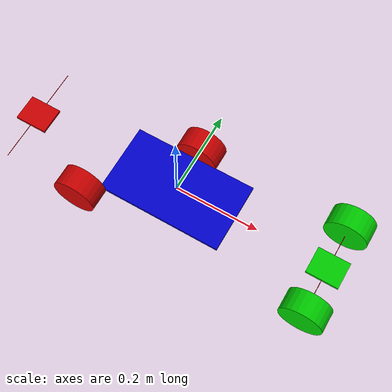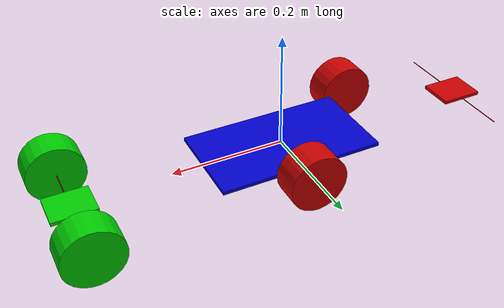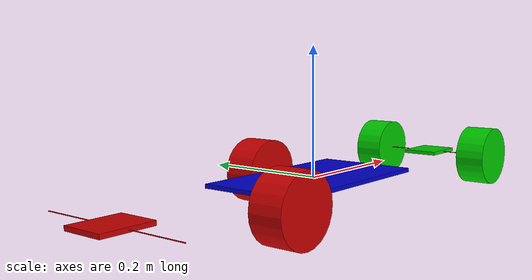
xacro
<?xml version='1.0'?>

<robot name="scteBot" xmlns:xacro="http://www.ros.org/wiki/xacro">

    <xacro:property name="M_PI" value="3.14159265358979323846264338327950288"/>

    <!-- vehicle params-->
    <xacro:property name="scte_chassis_length" value="0.292"/>
    <xacro:property name="scte_chassis_width" value="0.165"/>
    <xacro:property name="scte_chassis_depth" value="0.00635"/> <!--value="0.127"/-->
    <xacro:property name="scte_total_mass" value="3.8"/>
    <xacro:property name="scte_wheel_mass" value="0.5"/>

    <xacro:property name="scte_wheel_radius" value="0.0508"/>
    <xacro:property name="scte_wheel_depth" value="0.0508"/>

    <xacro:include filename="$(find scte_description)/urdf/scte.gazebo" />
    <xacro:include filename="$(find scte_description)/urdf/scte_diff.xacro"/>

    <xacro:include filename="$(find scte_description)/urdf/materials.xacro" />
    <xacro:include filename="$(find scte_description)/urdf/macros.xacro" />

    <!--LIDAR-->

    <link name="base_link">

    </link>

    <joint name="base_link" type="fixed">
        <origin xyz="0 0.0 0.0" rpy="0 -0 0"/>
        <parent link="base_link"/>
        <child link="scte_chassis"/>
    </joint>

    <link name='scte_chassis'>
        <inertial>
            <mass value="${scte_total_mass * 0.86}"/>
            <origin xyz="0 0 0" rpy="0 0 0"/>
            <inertia
                    ixx="1" ixy="0" ixz="0"
                    iyy="1" iyz="0"
                    izz="1"
            />
        </inertial>
        <visual name='visual'>
            <origin xyz="0 0 0" rpy="0 0 0"/>
            <geometry>
                <box size="${scte_chassis_length} ${scte_chassis_width} ${scte_chassis_depth}"/>
            </geometry>
            <material name="blue"/>
        </visual>
        <collision name='collision'>
            <origin xyz="0 0 0" rpy="0 0 0"/>
            <geometry>
                <box size="${scte_chassis_length} ${scte_chassis_width} ${scte_chassis_depth}"/>
            </geometry>
        </collision>
    </link>

    <joint name='scte_chassis_JOINT_scte_front_diff' type='fixed'>
        <origin xyz="${scte_chassis_length * 0.63} 0 0" rpy="0 0 0"/>
        <parent link="scte_chassis"/>
        <child link="scte_front_diff"/>
        <axis xyz="0 0 0" rpy="0 0 0"/>
    </joint>

    <joint name='scte_chassis_JOINT_scte_rear_diff' type='fixed'>
        <origin xyz="${scte_chassis_length * 0.63 * -1} 0 0" rpy="0 0 0"/>
        <parent link="scte_chassis"/>
        <child link="scte_rear_diff"/>
        <axis xyz="0 0 0" rpy="0 0 0"/>
    </joint>

</robot>

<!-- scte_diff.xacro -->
<robot>

    <!-- FRONT DIFF AND AXLE -->

    <link name="scte_front_diff">
        <inertial>
            <mass value="${scte_total_mass * 0.05}"/>
            <origin xyz="0 0 0" rpy="0 0 0"/>
            <inertia
                    ixx="1" ixy="0" ixz="0"
                    iyy="1" iyz="0"
                    izz="1"
            />
        </inertial>
        <visual name='visual'>
            <origin xyz="${scte_chassis_length * 0.63} 0 0" rpy="0 0 0"/>
            <geometry>
                <box size="${scte_chassis_length * 0.26} ${scte_chassis_width * 0.38} ${scte_chassis_depth}"/>
            </geometry>
            <material name="green"/>
        </visual>
        <collision name='collision'>
            <origin xyz="${scte_chassis_length * 0.63} 0 0" rpy="0 0 0"/>
            <geometry>
                <box size="${scte_chassis_length * 0.26} ${scte_chassis_width * 0.38} ${scte_chassis_depth}"/>
            </geometry>
        </collision>
    </link>

    <link name="scte_front_axle">
        <inertial>
            <mass value="${scte_total_mass * 0.02}"/>
            <origin xyz="0 0 0" rpy="0 0 0"/>
            <inertia
                    ixx="1" ixy="0" ixz="0"
                    iyy="1" iyz="0"
                    izz="1"
            />
        </inertial>
        <visual name='visual'>
            <origin xyz="${scte_chassis_length * 0.63} 0 0" rpy="0 0 0"/>
            <geometry>
                <cylinder radius="${scte_chassis_depth * 0.1}" length="${scte_chassis_width * 1.46}"/>
            </geometry>
            <material name="red"/>
        </visual>
        <collision name='collision'>
            <origin xyz="${scte_chassis_length * 0.63} 0 0" rpy="0 0 0"/>
            <geometry>
                <cylinder radius="${scte_chassis_depth * 0.1}" length="${scte_chassis_width * 1.46}"/>
            </geometry>
        </collision>
    </link>

    <link name="scte_front_left_wheel">
        <inertial>
            <mass value="${scte_wheel_mass / 4}"/>
            <origin xyz="0 0 0" rpy="0 0 0"/>
            <inertia
                    ixx="1" ixy="0" ixz="0"
                    iyy="1" iyz="0"
                    izz="1"
            />
        </inertial>
        <visual name='visual'>
            <origin xyz="${scte_chassis_length * 0.63} 0 ${scte_chassis_width * 0.65}" rpy="0 0 0"/>
            <geometry>
                <cylinder radius="${scte_wheel_radius}" length="${scte_wheel_depth}"/>
            </geometry>
            <material name="green"/>
        </visual>
        <collision name='collision'>
            <origin xyz="${scte_chassis_length * 0.63} 0 ${scte_chassis_width * 0.65}" rpy="0 0 0"/>
            <geometry>
                <cylinder radius="${scte_wheel_radius}" length="${scte_wheel_depth}"/>
            </geometry>
        </collision>
    </link>

    <link name="scte_front_right_wheel">
        <inertial>
            <mass value="${scte_wheel_mass / 4}"/>
            <origin xyz="0 0 0" rpy="0 0 0"/>
            <inertia
                    ixx="1" ixy="0" ixz="0"
                    iyy="1" iyz="0"
                    izz="1"
            />
        </inertial>
        <visual name='visual'>
            <origin xyz="${scte_chassis_length * 0.63} 0 ${scte_chassis_width * 0.65 * -1}" rpy="0 0 0"/>
            <geometry>
                <cylinder radius="${scte_wheel_radius}" length="${scte_wheel_depth}"/>
            </geometry>
            <material name="green"/>
        </visual>
        <collision name='collision'>
            <origin xyz="${scte_chassis_length * 0.63} 0 ${scte_chassis_width * 0.65 * -1}" rpy="0 0 0"/>
            <geometry>
                <cylinder radius="${scte_wheel_radius}" length="${scte_wheel_depth}"/>
            </geometry>
        </collision>
    </link>

    <joint name='scte_front_diff_JOINT_scte_front_axle' type='fixed'>
        <origin xyz="0 0 0" rpy="${M_PI/2} 0 0"/>
        <parent link="scte_front_diff"/>
        <child link="scte_front_axle"/>
        <axis xyz="0 0 0" rpy="0 0 0"/>
    </joint>

    <joint name='scte_front_axle_JOINT_scte_front_left_wheel' type='fixed'>
        <origin xyz="0 0 0" rpy="0 0 0"/>
        <parent link="scte_front_axle"/>
        <child link="scte_front_left_wheel"/>
        <axis xyz="0 0 0" rpy="0 0 0"/>
    </joint>

    <joint name='scte_front_axle_JOINT_scte_front_right_wheel' type='fixed'>
        <origin xyz="0 0 0" rpy="0 0 0"/>
        <parent link="scte_front_axle"/>
        <child link="scte_front_right_wheel"/>
        <axis xyz="0 0 0" rpy="0 0 0"/>
    </joint>

    <!-- REAR DIFF AND AXLE -->

    <link name="scte_rear_diff">
        <inertial>
            <mass value="${scte_total_mass * 0.05}"/>
            <origin xyz="0 0 0" rpy="0 0 0"/>
            <inertia
                    ixx="1" ixy="0" ixz="0"
                    iyy="1" iyz="0"
                    izz="1"
            />
        </inertial>
        <visual name='visual'>
            <origin xyz="${scte_chassis_length * 0.63 * -1} 0 0" rpy="0 0 0"/>
            <geometry>
                <box size="${scte_chassis_length * 0.26} ${scte_chassis_width * 0.38} ${scte_chassis_depth}"/>
            </geometry>
            <material name="red"/>
        </visual>
        <collision name='collision'>
            <origin xyz="${scte_chassis_length * 0.63 * -1} 0 0" rpy="0 0 0"/>
            <geometry>
                <box size="${scte_chassis_length * 0.26} ${scte_chassis_width * 0.38} ${scte_chassis_depth}"/>
            </geometry>
        </collision>
    </link>

    <link name="scte_rear_axle">
        <inertial>
            <mass value="${scte_total_mass * 0.02}"/>
            <origin xyz="0 0 0" rpy="0 0 0"/>
            <inertia
                    ixx="1" ixy="0" ixz="0"
                    iyy="1" iyz="0"
                    izz="1"
            />
        </inertial>
        <visual name='visual'>
            <origin xyz="${scte_chassis_length * 0.63 * -1} 0 0" rpy="0 0 0"/>
            <geometry>
                <cylinder radius="${scte_chassis_depth * 0.1}" length="${scte_chassis_width * 1.46}"/>
            </geometry>
            <material name="red"/>
        </visual>
        <collision name='collision'>
            <origin xyz="${scte_chassis_length * 0.63 * -1} 0 0" rpy="0 0 0"/>
            <geometry>
                <cylinder radius="${scte_chassis_depth * 0.1}" length="${scte_chassis_width * 1.46}"/>
            </geometry>
        </collision>
    </link>
    <link name="scte_rear_left_wheel">
        <inertial>
            <mass value="${scte_wheel_mass / 4}"/>
            <origin xyz="0 0 0" rpy="0 0 0"/>
            <inertia
                    ixx="1" ixy="0" ixz="0"
                    iyy="1" iyz="0"
                    izz="1"
            />
        </inertial> <!--${scte_chassis_length * 0.63 * 1.1}-->
        <visual name='visual'>
            <origin xyz="0 0 ${scte_chassis_width * 0.65}" rpy="0 0 0"/>
            <geometry>
                <cylinder radius="${scte_wheel_radius}" length="${scte_wheel_depth}"/>
            </geometry>
            <material name="red"/>
        </visual>
        <collision name='collision'>
            <origin xyz="0 0 ${scte_chassis_width * 0.65}" rpy="0 0 0"/>
            <geometry>
                <cylinder radius="${scte_wheel_radius}" length="${scte_wheel_depth}"/>
            </geometry>
        </collision>
    </link>

    <link name="scte_rear_right_wheel">
        <inertial>
            <mass value="${scte_wheel_mass / 4}"/>
            <origin xyz="0 0 0" rpy="0 0 0"/>
            <inertia
                    ixx="1" ixy="0" ixz="0"
                    iyy="1" iyz="0"
                    izz="1"
            />
        </inertial>
        <visual name='visual'>
            <origin xyz="${scte_chassis_length * 0.63} 0 ${scte_chassis_width * 0.65 * -1}" rpy="0 0 0"/>
            <geometry>
                <cylinder radius="${scte_wheel_radius}" length="${scte_wheel_depth}"/>
            </geometry>
            <material name="red"/>
        </visual>
        <collision name='collision'>
            <origin xyz="${scte_chassis_length * 0.63} 0 ${scte_chassis_width * 0.65 * -1}" rpy="0 0 0"/>
            <geometry>
                <cylinder radius="${scte_wheel_radius}" length="${scte_wheel_depth}"/>
            </geometry>
        </collision>
    </link>
    <joint name='scte_rear_diff_JOINT_scte_rear_axle' type='fixed'>
        <origin xyz="0 0 0" rpy="${M_PI/2} 0 0"/>
        <parent link="scte_rear_diff"/>
        <child link="scte_rear_axle"/>
        <axis xyz="0 0 0" rpy="0 0 0"/>
    </joint>
    <joint name='scte_rear_axle_JOINT_scte_rear_left_wheel' type='fixed'>
        <origin xyz="0 0 0" rpy="0 0 0"/>
        <parent link="scte_rear_axle"/>
        <child link="scte_rear_left_wheel"/>
        <axis xyz="0 0 0" rpy="0 0 0"/>
    </joint>

    <joint name='scte_rear_axle_JOINT_scte_rear_right_wheel' type='fixed'>
        <origin xyz="0 0 0" rpy="0 0 0"/>
        <parent link="scte_rear_axle"/>
        <child link="scte_rear_right_wheel"/>
        <axis xyz="0 0 0" rpy="0 0 0"/>
    </joint>
</robot>

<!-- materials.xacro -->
<!--  xacro macros for robot materials.
 -->
<robot name="materials" xmlns:xacro="http://wiki.ros.org/xacro">
    <material name="red">
        <color rgba="0.8 0 0 1"/>
    </material>

    <material name="green">
        <color rgba="0 0.8 0 1"/>
    </material>

    <material name="blue">
        <color rgba="0 0 0.8 1"/>
    </material>

    <material name="yellow">
        <color rgba="0.8 0.8 0 1"/>
    </material>

    <material name="orange">
        <color rgba="0.8 0.25 0 1"/>
    </material>

    <material name="black">
        <color rgba="0 0 0 1"/>
    </material>

    <material name="dark_gray">
        <color rgba="0.5 0.5 0.5 1"/>
    </material>

    <material name="gray">
        <color rgba="0.753 0.753 0.753 1"/>
    </material>

    <material name="silver">
        <color rgba="0.88 0.88 0.88 1"/>
    </material>

    <material name="white">
        <color rgba="1 1 1 1"/>
    </material>
</robot>
